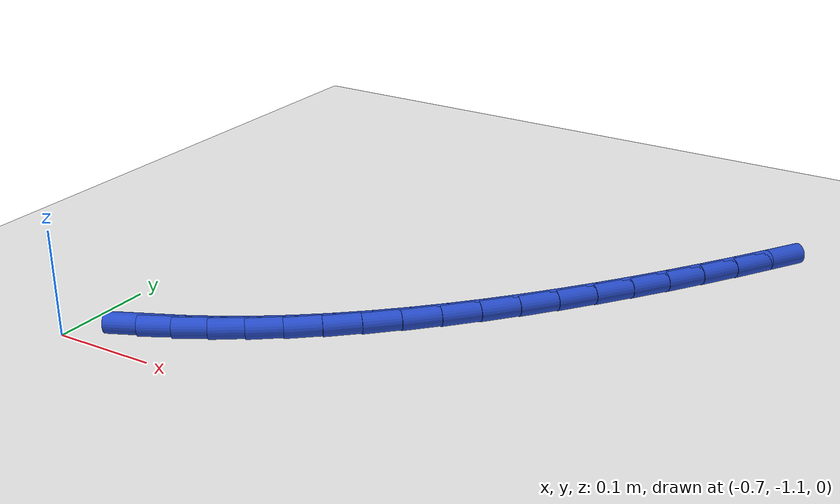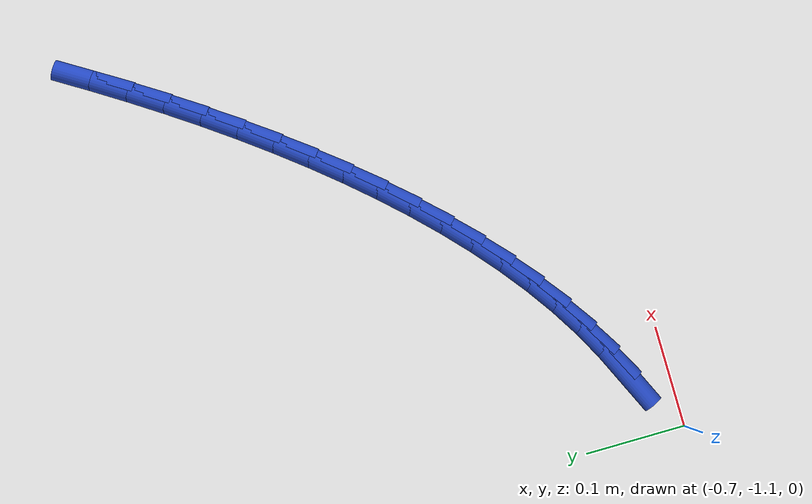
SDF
<sdf version="1.6">
 <world name="default">
  <model name="ground_plane">
   <static>1</static>
   <link name="link">
    <collision name="collision">
     <geometry><plane><normal>0 0 1</normal><size>100 100</size></plane></geometry>
     <surface><friction><ode><mu>100</mu><mu2>50</mu2></ode></friction></surface>
    </collision>
    <visual name="visual">
     <cast_shadows>0</cast_shadows>
     <geometry><plane><normal>0 0 1</normal><size>100 100</size></plane></geometry>
     <material>
      <script><uri>file://media/materials/scripts/gazebo.material</uri><name>Gazebo/WhiteGlow</name></script>
     </material>
    </visual>
   </link>
  </model>
  <model name="line">
   <link name="link_184">
    <pose>-0.6340253708248743 -1.0584208738790133 0.01 0 1.57 0.43357291823381783</pose>
    <collision name="collision">
     <geometry><cylinder><radius>0.01</radius><length>0.08</length></cylinder></geometry>
    </collision>
    <visual name="visual">
     <material>
      <script><name>Gazebo/Blue</name><uri>file://media/materials/scripts/gazebo.material</uri></script>
     </material>
     <geometry><cylinder><radius>0.01</radius><length>0.08</length></cylinder></geometry>
    </visual>
   </link>
   <link name="link_185">
    <pose>-0.6061340031997741 -1.0455084937972614 0.01 0 1.57 0.49265518491650095</pose>
    <collision name="collision">
     <geometry><cylinder><radius>0.01</radius><length>0.08</length></cylinder></geometry>
    </collision>
    <visual name="visual">
     <material>
      <script><name>Gazebo/Blue</name><uri>file://media/materials/scripts/gazebo.material</uri></script>
     </material>
     <geometry><cylinder><radius>0.01</radius><length>0.08</length></cylinder></geometry>
    </visual>
   </link>
   <link name="link_186">
    <pose>-0.5786781298317022 -1.0307700825570847 0.01 0 1.57 0.5527990200994832</pose>
    <collision name="collision">
     <geometry><cylinder><radius>0.01</radius><length>0.08</length></cylinder></geometry>
    </collision>
    <visual name="visual">
     <material>
      <script><name>Gazebo/Blue</name><uri>file://media/materials/scripts/gazebo.material</uri></script>
     </material>
     <geometry><cylinder><radius>0.01</radius><length>0.08</length></cylinder></geometry>
    </visual>
   </link>
   <link name="link_187">
    <pose>-0.551571044736611 -1.0140460137480787 0.01 0 1.57 0.6075786623438827</pose>
    <collision name="collision">
     <geometry><cylinder><radius>0.01</radius><length>0.08</length></cylinder></geometry>
    </collision>
    <visual name="visual">
     <material>
      <script><name>Gazebo/Blue</name><uri>file://media/materials/scripts/gazebo.material</uri></script>
     </material>
     <geometry><cylinder><radius>0.01</radius><length>0.08</length></cylinder></geometry>
    </visual>
   </link>
   <link name="link_188">
    <pose>-0.5248261434009376 -0.9954497272004704 0.01 0 1.57 0.6572739479997001</pose>
    <collision name="collision">
     <geometry><cylinder><radius>0.01</radius><length>0.08</length></cylinder></geometry>
    </collision>
    <visual name="visual">
     <material>
      <script><name>Gazebo/Blue</name><uri>file://media/materials/scripts/gazebo.material</uri></script>
     </material>
     <geometry><cylinder><radius>0.01</radius><length>0.08</length></cylinder></geometry>
    </visual>
   </link>
   <link name="link_189">
    <pose>-0.4984591953101653 -0.9751011387631852 0.01 0 1.57 0.7023383705439139</pose>
    <collision name="collision">
     <geometry><cylinder><radius>0.01</radius><length>0.08</length></cylinder></geometry>
    </collision>
    <visual name="visual">
     <material>
      <script><name>Gazebo/Blue</name><uri>file://media/materials/scripts/gazebo.material</uri></script>
     </material>
     <geometry><cylinder><radius>0.01</radius><length>0.08</length></cylinder></geometry>
    </visual>
   </link>
   <link name="link_190">
    <pose>-0.47248596994977654 -0.9531201642851471 0.01 0 1.57 0.7432216494206366</pose>
    <collision name="collision">
     <geometry><cylinder><radius>0.01</radius><length>0.08</length></cylinder></geometry>
    </collision>
    <visual name="visual">
     <material>
      <script><name>Gazebo/Blue</name><uri>file://media/materials/scripts/gazebo.material</uri></script>
     </material>
     <geometry><cylinder><radius>0.01</radius><length>0.08</length></cylinder></geometry>
    </visual>
   </link>
   <link name="link_191">
    <pose>-0.4469222368052555 -0.9296267196152823 0.01 0 1.57 0.7803512276782508</pose>
    <collision name="collision">
     <geometry><cylinder><radius>0.01</radius><length>0.08</length></cylinder></geometry>
    </collision>
    <visual name="visual">
     <material>
      <script><name>Gazebo/Blue</name><uri>file://media/materials/scripts/gazebo.material</uri></script>
     </material>
     <geometry><cylinder><radius>0.01</radius><length>0.08</length></cylinder></geometry>
    </visual>
   </link>
   <link name="link_192">
    <pose>-0.42178376536208473 -0.9047407206025154 0.01 0 1.57 0.8141222692888391</pose>
    <collision name="collision">
     <geometry><cylinder><radius>0.01</radius><length>0.08</length></cylinder></geometry>
    </collision>
    <visual name="visual">
     <material>
      <script><name>Gazebo/Blue</name><uri>file://media/materials/scripts/gazebo.material</uri></script>
     </material>
     <geometry><cylinder><radius>0.01</radius><length>0.08</length></cylinder></geometry>
    </visual>
   </link>
   <link name="link_193">
    <pose>-0.39708632510574743 -0.8785820830957712 0.01 0 1.57 0.8448933644870482</pose>
    <collision name="collision">
     <geometry><cylinder><radius>0.01</radius><length>0.08</length></cylinder></geometry>
    </collision>
    <visual name="visual">
     <material>
      <script><name>Gazebo/Blue</name><uri>file://media/materials/scripts/gazebo.material</uri></script>
     </material>
     <geometry><cylinder><radius>0.01</radius><length>0.08</length></cylinder></geometry>
    </visual>
   </link>
   <link name="link_194">
    <pose>-0.37284568552172676 -0.8512707229439752 0.01 0 1.57 0.8729858367092598</pose>
    <collision name="collision">
     <geometry><cylinder><radius>0.01</radius><length>0.08</length></cylinder></geometry>
    </collision>
    <visual name="visual">
     <material>
      <script><name>Gazebo/Blue</name><uri>file://media/materials/scripts/gazebo.material</uri></script>
     </material>
     <geometry><cylinder><radius>0.01</radius><length>0.08</length></cylinder></geometry>
    </visual>
   </link>
   <link name="link_195">
    <pose>-0.34907761609550503 -0.822926555996051 0.01 0 1.57 0.8986851679745791</pose>
    <collision name="collision">
     <geometry><cylinder><radius>0.01</radius><length>0.08</length></cylinder></geometry>
    </collision>
    <visual name="visual">
     <material>
      <script><name>Gazebo/Blue</name><uri>file://media/materials/scripts/gazebo.material</uri></script>
     </material>
     <geometry><cylinder><radius>0.01</radius><length>0.08</length></cylinder></geometry>
    </visual>
   </link>
   <link name="link_196">
    <pose>-0.3257978863125667 -0.7936694981009259 0.01 0 1.57 0.9222435513135419</pose>
    <collision name="collision">
     <geometry><cylinder><radius>0.01</radius><length>0.08</length></cylinder></geometry>
    </collision>
    <visual name="visual">
     <material>
      <script><name>Gazebo/Blue</name><uri>file://media/materials/scripts/gazebo.material</uri></script>
     </material>
     <geometry><cylinder><radius>0.01</radius><length>0.08</length></cylinder></geometry>
    </visual>
   </link>
   <link name="link_197">
    <pose>-0.30302226565839413 -0.7636194651075233 0.01 0 1.57 0.9438829365945467</pose>
    <collision name="collision">
     <geometry><cylinder><radius>0.01</radius><length>0.08</length></cylinder></geometry>
    </collision>
    <visual name="visual">
     <material>
      <script><name>Gazebo/Blue</name><uri>file://media/materials/scripts/gazebo.material</uri></script>
     </material>
     <geometry><cylinder><radius>0.01</radius><length>0.08</length></cylinder></geometry>
    </visual>
   </link>
   <link name="link_198">
    <pose>-0.2807665236184705 -0.7328963728647687 0.01 0 1.57 0.9637981826259209</pose>
    <collision name="collision">
     <geometry><cylinder><radius>0.01</radius><length>0.08</length></cylinder></geometry>
    </collision>
    <visual name="visual">
     <material>
      <script><name>Gazebo/Blue</name><uri>file://media/materials/scripts/gazebo.material</uri></script>
     </material>
     <geometry><cylinder><radius>0.01</radius><length>0.08</length></cylinder></geometry>
    </visual>
   </link>
   <link name="link_199">
    <pose>-0.2590464296782784 -0.7016201372215863 0.01 0 1.57 0.9821600914605917</pose>
    <collision name="collision">
     <geometry><cylinder><radius>0.01</radius><length>0.08</length></cylinder></geometry>
    </collision>
    <visual name="visual">
     <material>
      <script><name>Gazebo/Blue</name><uri>file://media/materials/scripts/gazebo.material</uri></script>
     </material>
     <geometry><cylinder><radius>0.01</radius><length>0.08</length></cylinder></geometry>
    </visual>
   </link>
   <link name="link_200">
    <pose>-0.23787775332330205 -0.6699106740269027 0.01 0 1.57 0.9991182048439163</pose>
    <collision name="collision">
     <geometry><cylinder><radius>0.01</radius><length>0.08</length></cylinder></geometry>
    </collision>
    <visual name="visual">
     <material>
      <script><name>Gazebo/Blue</name><uri>file://media/materials/scripts/gazebo.material</uri></script>
     </material>
     <geometry><cylinder><radius>0.01</radius><length>0.08</length></cylinder></geometry>
    </visual>
   </link>
   <link name="link_201">
    <pose>-0.21727626403902395 -0.637887899129642 0.01 0 1.57 1.0148033065949775</pose>
    <collision name="collision">
     <geometry><cylinder><radius>0.01</radius><length>0.08</length></cylinder></geometry>
    </collision>
    <visual name="visual">
     <material>
      <script><name>Gazebo/Blue</name><uri>file://media/materials/scripts/gazebo.material</uri></script>
     </material>
     <geometry><cylinder><radius>0.01</radius><length>0.08</length></cylinder></geometry>
    </visual>
   </link>
  </model>
 </world>
</sdf>
